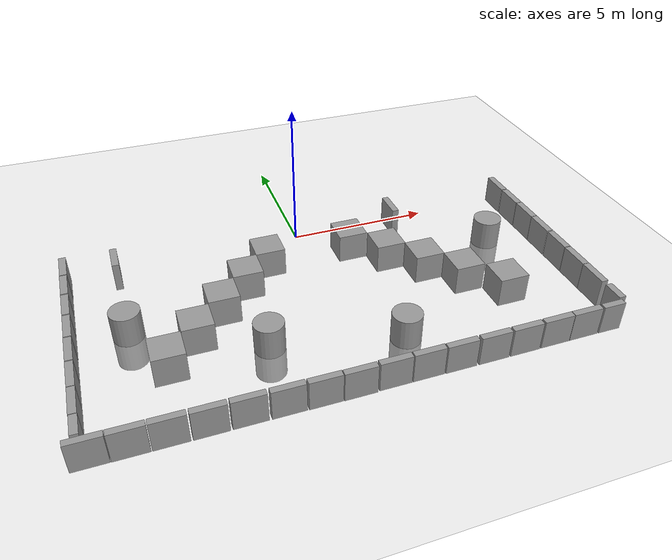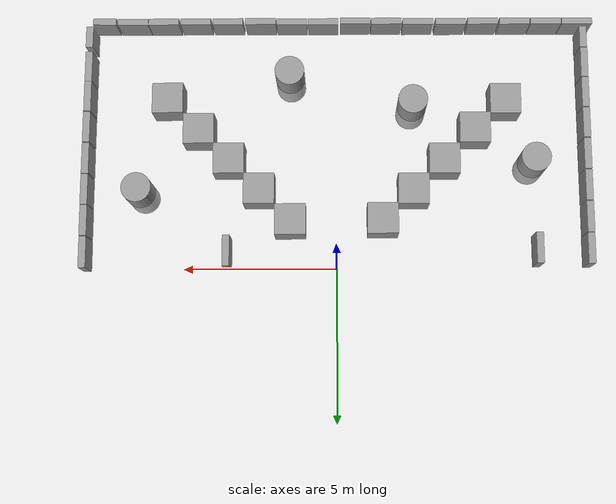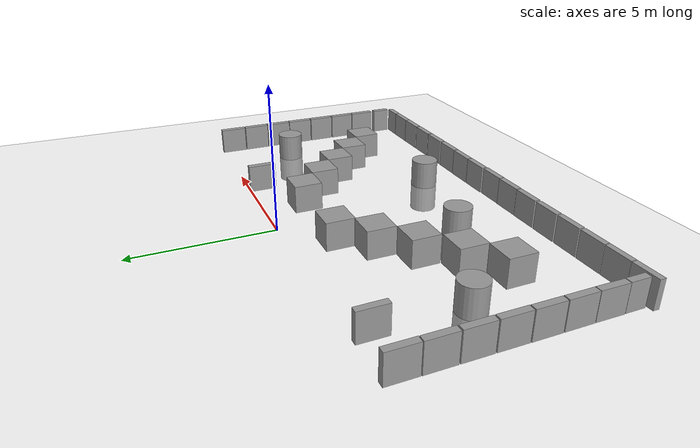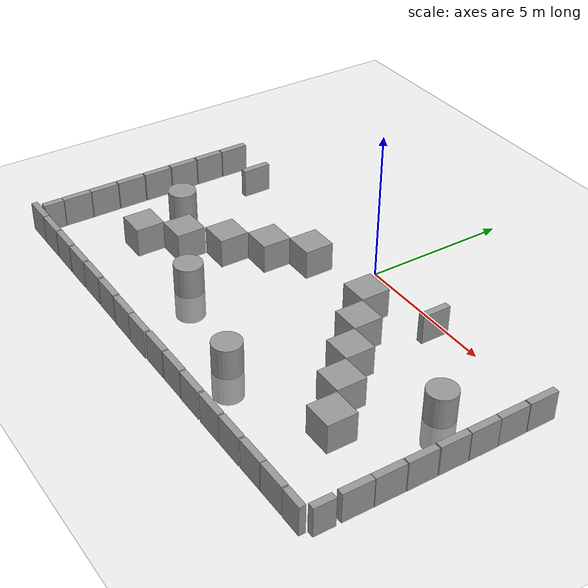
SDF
<sdf version="1.6">
 <world name="default">
  <model name="ground_plane">
   <static>1</static>
   <static>1</static>
   <link name="link">
    <collision name="collision">
     <geometry><plane><normal>0 0 1</normal><size>100 100</size></plane></geometry>
     <surface><friction><ode><mu>100</mu><mu2>50</mu2></ode></friction></surface>
    </collision>
    <visual name="visual">
     <cast_shadows>0</cast_shadows>
     <geometry><plane><normal>0 0 1</normal><size>100 100</size></plane></geometry>
     <material>
      <script><uri>file://media/materials/scripts/gazebo.material</uri><name>Gazebo/Grey</name></script>
     </material>
    </visual>
   </link>
  </model>
  <model name="unit_box_0_clone_7">
   <pose>8.11276 -0.449315 0.5 0 -0 0.000127</pose>
   <link name="link">
    <inertial>
     <mass>1</mass>
     <inertia>
      <ixx>0.166667</ixx>
      <ixy>0</ixy>
      <ixz>0</ixz>
      <iyy>0.166667</iyy>
      <iyz>0</iyz>
      <izz>0.166667</izz>
     </inertia>
    </inertial>
    <collision name="collision"><geometry><box><size>0.230819 1 1</size></box></geometry></collision>
    <visual name="visual">
     <geometry><box><size>0.230819 1 1</size></box></geometry>
     <material>
      <script><name>Gazebo/Grey</name><uri>file://media/materials/scripts/gazebo.material</uri></script>
     </material>
    </visual>
   </link>
  </model>
  <model name="unit_box_0_clone_8">
   <pose>8.11912 -1.4863 0.5 0 -0 0.000127</pose>
   <link name="link">
    <inertial>
     <mass>1</mass>
     <inertia>
      <ixx>0.166667</ixx>
      <ixy>0</ixy>
      <ixz>0</ixz>
      <iyy>0.166667</iyy>
      <iyz>0</iyz>
      <izz>0.166667</izz>
     </inertia>
    </inertial>
    <collision name="collision"><geometry><box><size>0.230819 1 1</size></box></geometry></collision>
    <visual name="visual">
     <geometry><box><size>0.230819 1 1</size></box></geometry>
     <material>
      <script><name>Gazebo/Grey</name><uri>file://media/materials/scripts/gazebo.material</uri></script>
     </material>
    </visual>
   </link>
  </model>
  <model name="unit_box_0_clone_9">
   <pose>8.12548 -2.5042 0.5 0 -0 0.000127</pose>
   <link name="link">
    <inertial>
     <mass>1</mass>
     <inertia>
      <ixx>0.166667</ixx>
      <ixy>0</ixy>
      <ixz>0</ixz>
      <iyy>0.166667</iyy>
      <iyz>0</iyz>
      <izz>0.166667</izz>
     </inertia>
    </inertial>
    <collision name="collision"><geometry><box><size>0.230819 1 1</size></box></geometry></collision>
    <visual name="visual">
     <geometry><box><size>0.230819 1 1</size></box></geometry>
     <material>
      <script><name>Gazebo/Grey</name><uri>file://media/materials/scripts/gazebo.material</uri></script>
     </material>
    </visual>
   </link>
  </model>
  <model name="unit_box_0_clone_10">
   <pose>8.12331 -3.52222 0.5 0 -0 0.000127</pose>
   <link name="link">
    <inertial>
     <mass>1</mass>
     <inertia>
      <ixx>0.166667</ixx>
      <ixy>0</ixy>
      <ixz>0</ixz>
      <iyy>0.166667</iyy>
      <iyz>0</iyz>
      <izz>0.166667</izz>
     </inertia>
    </inertial>
    <collision name="collision"><geometry><box><size>0.230819 1 1</size></box></geometry></collision>
    <visual name="visual">
     <geometry><box><size>0.230819 1 1</size></box></geometry>
     <material>
      <script><name>Gazebo/Grey</name><uri>file://media/materials/scripts/gazebo.material</uri></script>
     </material>
    </visual>
   </link>
  </model>
  <model name="unit_box_0_clone_11">
   <pose>8.1233 -4.56315 0.5 0 -0 0.000127</pose>
   <link name="link">
    <inertial>
     <mass>1</mass>
     <inertia>
      <ixx>0.166667</ixx>
      <ixy>0</ixy>
      <ixz>0</ixz>
      <iyy>0.166667</iyy>
      <iyz>0</iyz>
      <izz>0.166667</izz>
     </inertia>
    </inertial>
    <collision name="collision"><geometry><box><size>0.230819 1 1</size></box></geometry></collision>
    <visual name="visual">
     <geometry><box><size>0.230819 1 1</size></box></geometry>
     <material>
      <script><name>Gazebo/Grey</name><uri>file://media/materials/scripts/gazebo.material</uri></script>
     </material>
    </visual>
   </link>
  </model>
  <model name="unit_box_0_clone_12">
   <pose>8.11815 -5.59377 0.5 0 -0 0.000127</pose>
   <link name="link">
    <inertial>
     <mass>1</mass>
     <inertia>
      <ixx>0.166667</ixx>
      <ixy>0</ixy>
      <ixz>0</ixz>
      <iyy>0.166667</iyy>
      <iyz>0</iyz>
      <izz>0.166667</izz>
     </inertia>
    </inertial>
    <collision name="collision"><geometry><box><size>0.230819 1 1</size></box></geometry></collision>
    <visual name="visual">
     <geometry><box><size>0.230819 1 1</size></box></geometry>
     <material>
      <script><name>Gazebo/Grey</name><uri>file://media/materials/scripts/gazebo.material</uri></script>
     </material>
    </visual>
   </link>
  </model>
  <model name="unit_box_0_clone_13">
   <pose>8.11333 -6.60776 0.5 -0 -0 -0.005608</pose>
   <link name="link">
    <inertial>
     <mass>1</mass>
     <inertia>
      <ixx>0.166667</ixx>
      <ixy>0</ixy>
      <ixz>0</ixz>
      <iyy>0.166667</iyy>
      <iyz>0</iyz>
      <izz>0.166667</izz>
     </inertia>
    </inertial>
    <collision name="collision"><geometry><box><size>0.230819 1 1</size></box></geometry></collision>
    <visual name="visual">
     <geometry><box><size>0.230819 1 1</size></box></geometry>
     <material>
      <script><name>Gazebo/Grey</name><uri>file://media/materials/scripts/gazebo.material</uri></script>
     </material>
    </visual>
   </link>
  </model>
  <model name="unit_box_clone_15_clone_0">
   <pose>6.71207 -8.1313 0.5 0 -0 0.000187</pose>
   <link name="link">
    <inertial>
     <mass>1</mass>
     <inertia>
      <ixx>0.166667</ixx>
      <ixy>0</ixy>
      <ixz>0</ixz>
      <iyy>0.166667</iyy>
      <iyz>0</iyz>
      <izz>0.166667</izz>
     </inertia>
    </inertial>
    <collision name="collision"><geometry><box><size>1 0.210541 1</size></box></geometry></collision>
    <visual name="visual">
     <geometry><box><size>1 0.210541 1</size></box></geometry>
     <material>
      <script><name>Gazebo/Grey</name><uri>file://media/materials/scripts/gazebo.material</uri></script>
     </material>
    </visual>
   </link>
  </model>
  <model name="unit_box_clone_15_clone_1">
   <pose>5.69716 -8.13129 0.5 0 -0 0.000187</pose>
   <link name="link">
    <inertial>
     <mass>1</mass>
     <inertia>
      <ixx>0.166667</ixx>
      <ixy>0</ixy>
      <ixz>0</ixz>
      <iyy>0.166667</iyy>
      <iyz>0</iyz>
      <izz>0.166667</izz>
     </inertia>
    </inertial>
    <collision name="collision"><geometry><box><size>1 0.210541 1</size></box></geometry></collision>
    <visual name="visual">
     <geometry><box><size>1 0.210541 1</size></box></geometry>
     <material>
      <script><name>Gazebo/Grey</name><uri>file://media/materials/scripts/gazebo.material</uri></script>
     </material>
    </visual>
   </link>
  </model>
  <model name="unit_box_clone_15_clone_2">
   <pose>4.63882 -8.13747 0.5 0 -0 0.000187</pose>
   <link name="link">
    <inertial>
     <mass>1</mass>
     <inertia>
      <ixx>0.166667</ixx>
      <ixy>0</ixy>
      <ixz>0</ixz>
      <iyy>0.166667</iyy>
      <iyz>0</iyz>
      <izz>0.166667</izz>
     </inertia>
    </inertial>
    <collision name="collision"><geometry><box><size>1 0.210541 1</size></box></geometry></collision>
    <visual name="visual">
     <geometry><box><size>1 0.210541 1</size></box></geometry>
     <material>
      <script><name>Gazebo/Grey</name><uri>file://media/materials/scripts/gazebo.material</uri></script>
     </material>
    </visual>
   </link>
  </model>
  <model name="unit_box_clone_15_clone_3">
   <pose>3.57976 -8.13747 0.5 0 -0 0.000187</pose>
   <link name="link">
    <inertial>
     <mass>1</mass>
     <inertia>
      <ixx>0.166667</ixx>
      <ixy>0</ixy>
      <ixz>0</ixz>
      <iyy>0.166667</iyy>
      <iyz>0</iyz>
      <izz>0.166667</izz>
     </inertia>
    </inertial>
    <collision name="collision"><geometry><box><size>1 0.210541 1</size></box></geometry></collision>
    <visual name="visual">
     <geometry><box><size>1 0.210541 1</size></box></geometry>
     <material>
      <script><name>Gazebo/Grey</name><uri>file://media/materials/scripts/gazebo.material</uri></script>
     </material>
    </visual>
   </link>
  </model>
  <model name="unit_box_clone_15_clone_4">
   <pose>2.49816 -8.13746 0.5 0 -0 0.000187</pose>
   <link name="link">
    <inertial>
     <mass>1</mass>
     <inertia>
      <ixx>0.166667</ixx>
      <ixy>0</ixy>
      <ixz>0</ixz>
      <iyy>0.166667</iyy>
      <iyz>0</iyz>
      <izz>0.166667</izz>
     </inertia>
    </inertial>
    <collision name="collision"><geometry><box><size>1 0.210541 1</size></box></geometry></collision>
    <visual name="visual">
     <geometry><box><size>1 0.210541 1</size></box></geometry>
     <material>
      <script><name>Gazebo/Grey</name><uri>file://media/materials/scripts/gazebo.material</uri></script>
     </material>
    </visual>
   </link>
  </model>
  <model name="unit_box_clone_15_clone_5">
   <pose>1.46162 -8.12619 0.5 0 -0 0.000187</pose>
   <link name="link">
    <inertial>
     <mass>1</mass>
     <inertia>
      <ixx>0.166667</ixx>
      <ixy>0</ixy>
      <ixz>0</ixz>
      <iyy>0.166667</iyy>
      <iyz>0</iyz>
      <izz>0.166667</izz>
     </inertia>
    </inertial>
    <collision name="collision"><geometry><box><size>1 0.210541 1</size></box></geometry></collision>
    <visual name="visual">
     <geometry><box><size>1 0.210541 1</size></box></geometry>
     <material>
      <script><name>Gazebo/Grey</name><uri>file://media/materials/scripts/gazebo.material</uri></script>
     </material>
    </visual>
   </link>
  </model>
  <model name="unit_box_clone_15_clone_6">
   <pose>0.425094 -8.12618 0.5 0 -0 0.000187</pose>
   <link name="link">
    <inertial>
     <mass>1</mass>
     <inertia>
      <ixx>0.166667</ixx>
      <ixy>0</ixy>
      <ixz>0</ixz>
      <iyy>0.166667</iyy>
      <iyz>0</iyz>
      <izz>0.166667</izz>
     </inertia>
    </inertial>
    <collision name="collision"><geometry><box><size>1 0.210541 1</size></box></geometry></collision>
    <visual name="visual">
     <geometry><box><size>1 0.210541 1</size></box></geometry>
     <material>
      <script><name>Gazebo/Grey</name><uri>file://media/materials/scripts/gazebo.material</uri></script>
     </material>
    </visual>
   </link>
  </model>
  <model name="unit_box_clone_15_clone_7">
   <pose>-0.633968 -8.14873 0.5 0 -0 0.000187</pose>
   <link name="link">
    <inertial>
     <mass>1</mass>
     <inertia>
      <ixx>0.166667</ixx>
      <ixy>0</ixy>
      <ixz>0</ixz>
      <iyy>0.166667</iyy>
      <iyz>0</iyz>
      <izz>0.166667</izz>
     </inertia>
    </inertial>
    <collision name="collision"><geometry><box><size>1 0.210541 1</size></box></geometry></collision>
    <visual name="visual">
     <geometry><box><size>1 0.210541 1</size></box></geometry>
     <material>
      <script><name>Gazebo/Grey</name><uri>file://media/materials/scripts/gazebo.material</uri></script>
     </material>
    </visual>
   </link>
  </model>
  <model name="unit_box_clone_15_clone_8">
   <pose>-1.65922 -8.13745 0.5 0 -0 0.000187</pose>
   <link name="link">
    <inertial>
     <mass>1</mass>
     <inertia>
      <ixx>0.166667</ixx>
      <ixy>0</ixy>
      <ixz>0</ixz>
      <iyy>0.166667</iyy>
      <iyz>0</iyz>
      <izz>0.166667</izz>
     </inertia>
    </inertial>
    <collision name="collision"><geometry><box><size>1 0.210541 1</size></box></geometry></collision>
    <visual name="visual">
     <geometry><box><size>1 0.210541 1</size></box></geometry>
     <material>
      <script><name>Gazebo/Grey</name><uri>file://media/materials/scripts/gazebo.material</uri></script>
     </material>
    </visual>
   </link>
  </model>
  <model name="unit_box_clone_15_clone_9">
   <pose>-2.70702 -8.1262 0.5 0 -0 0.000187</pose>
   <link name="link">
    <inertial>
     <mass>1</mass>
     <inertia>
      <ixx>0.166667</ixx>
      <ixy>0</ixy>
      <ixz>0</ixz>
      <iyy>0.166667</iyy>
      <iyz>0</iyz>
      <izz>0.166667</izz>
     </inertia>
    </inertial>
    <collision name="collision"><geometry><box><size>1 0.210541 1</size></box></geometry></collision>
    <visual name="visual">
     <geometry><box><size>1 0.210541 1</size></box></geometry>
     <material>
      <script><name>Gazebo/Grey</name><uri>file://media/materials/scripts/gazebo.material</uri></script>
     </material>
    </visual>
   </link>
  </model>
  <model name="unit_box_0_clone_4_clone_7">
   <pose>-8.12609 -0.518029 0.5 0 -0 0.000127</pose>
   <link name="link">
    <inertial>
     <mass>1</mass>
     <inertia>
      <ixx>0.166667</ixx>
      <ixy>0</ixy>
      <ixz>0</ixz>
      <iyy>0.166667</iyy>
      <iyz>0</iyz>
      <izz>0.166667</izz>
     </inertia>
    </inertial>
    <collision name="collision"><geometry><box><size>0.230819 1 1</size></box></geometry></collision>
    <visual name="visual">
     <geometry><box><size>0.230819 1 1</size></box></geometry>
     <material>
      <script><name>Gazebo/Grey</name><uri>file://media/materials/scripts/gazebo.material</uri></script>
     </material>
    </visual>
   </link>
  </model>
  <model name="unit_box_0_clone_4_clone_8">
   <pose>-8.13284 -1.54445 0.5 0 -0 0.000127</pose>
   <link name="link">
    <inertial>
     <mass>1</mass>
     <inertia>
      <ixx>0.166667</ixx>
      <ixy>0</ixy>
      <ixz>0</ixz>
      <iyy>0.166667</iyy>
      <iyz>0</iyz>
      <izz>0.166667</izz>
     </inertia>
    </inertial>
    <collision name="collision"><geometry><box><size>0.230819 1 1</size></box></geometry></collision>
    <visual name="visual">
     <geometry><box><size>0.230819 1 1</size></box></geometry>
     <material>
      <script><name>Gazebo/Grey</name><uri>file://media/materials/scripts/gazebo.material</uri></script>
     </material>
    </visual>
   </link>
  </model>
  <model name="unit_box_0_clone_4_clone_9">
   <pose>-8.13285 -2.58437 0.5 0 -0 0.000127</pose>
   <link name="link">
    <inertial>
     <mass>1</mass>
     <inertia>
      <ixx>0.166667</ixx>
      <ixy>0</ixy>
      <ixz>0</ixz>
      <iyy>0.166667</iyy>
      <iyz>0</iyz>
      <izz>0.166667</izz>
     </inertia>
    </inertial>
    <collision name="collision"><geometry><box><size>0.230819 1 1</size></box></geometry></collision>
    <visual name="visual">
     <geometry><box><size>0.230819 1 1</size></box></geometry>
     <material>
      <script><name>Gazebo/Grey</name><uri>file://media/materials/scripts/gazebo.material</uri></script>
     </material>
    </visual>
   </link>
  </model>
  <model name="unit_box_0_clone_4_clone_10">
   <pose>-8.13285 -3.62429 0.5 0 -0 0.000127</pose>
   <link name="link">
    <inertial>
     <mass>1</mass>
     <inertia>
      <ixx>0.166667</ixx>
      <ixy>0</ixy>
      <ixz>0</ixz>
      <iyy>0.166667</iyy>
      <iyz>0</iyz>
      <izz>0.166667</izz>
     </inertia>
    </inertial>
    <collision name="collision"><geometry><box><size>0.230819 1 1</size></box></geometry></collision>
    <visual name="visual">
     <geometry><box><size>0.230819 1 1</size></box></geometry>
     <material>
      <script><name>Gazebo/Grey</name><uri>file://media/materials/scripts/gazebo.material</uri></script>
     </material>
    </visual>
   </link>
  </model>
  <model name="unit_box_0_clone_4_clone_11">
   <pose>-8.1396 -4.65746 0.5 0 -0 0.000127</pose>
   <link name="link">
    <inertial>
     <mass>1</mass>
     <inertia>
      <ixx>0.166667</ixx>
      <ixy>0</ixy>
      <ixz>0</ixz>
      <iyy>0.166667</iyy>
      <iyz>0</iyz>
      <izz>0.166667</izz>
     </inertia>
    </inertial>
    <collision name="collision"><geometry><box><size>0.230819 1 1</size></box></geometry></collision>
    <visual name="visual">
     <geometry><box><size>0.230819 1 1</size></box></geometry>
     <material>
      <script><name>Gazebo/Grey</name><uri>file://media/materials/scripts/gazebo.material</uri></script>
     </material>
    </visual>
   </link>
  </model>
  <model name="unit_box_0_clone_4_clone_12">
   <pose>-8.1396 -5.69063 0.5 0 -0 0.000127</pose>
   <link name="link">
    <inertial>
     <mass>1</mass>
     <inertia>
      <ixx>0.166667</ixx>
      <ixy>0</ixy>
      <ixz>0</ixz>
      <iyy>0.166667</iyy>
      <iyz>0</iyz>
      <izz>0.166667</izz>
     </inertia>
    </inertial>
    <collision name="collision"><geometry><box><size>0.230819 1 1</size></box></geometry></collision>
    <visual name="visual">
     <geometry><box><size>0.230819 1 1</size></box></geometry>
     <material>
      <script><name>Gazebo/Grey</name><uri>file://media/materials/scripts/gazebo.material</uri></script>
     </material>
    </visual>
   </link>
  </model>
  <model name="unit_box_0_clone_4_clone_13">
   <pose>-8.14113 -6.70872 0.5 1e-06 -1e-06 -0.009587</pose>
   <link name="link">
    <inertial>
     <mass>1</mass>
     <inertia>
      <ixx>0.166667</ixx>
      <ixy>0</ixy>
      <ixz>0</ixz>
      <iyy>0.166667</iyy>
      <iyz>0</iyz>
      <izz>0.166667</izz>
     </inertia>
    </inertial>
    <collision name="collision"><geometry><box><size>0.230819 1 1</size></box></geometry></collision>
    <visual name="visual">
     <geometry><box><size>0.230819 1 1</size></box></geometry>
     <material>
      <script><name>Gazebo/Grey</name><uri>file://media/materials/scripts/gazebo.material</uri></script>
     </material>
    </visual>
   </link>
  </model>
  <model name="unit_box_0_clone_4_clone_13_clone_clone">
   <pose>-8.13833 -7.57659 0.500001 1e-06 -0 -0.007573</pose>
   <link name="link">
    <inertial>
     <mass>1</mass>
     <inertia>
      <ixx>0.166667</ixx>
      <ixy>0</ixy>
      <ixz>0</ixz>
      <iyy>0.166667</iyy>
      <iyz>0</iyz>
      <izz>0.166667</izz>
     </inertia>
    </inertial>
    <collision name="collision"><geometry><box><size>0.230819 0.700336 1</size></box></geometry></collision>
    <visual name="visual">
     <geometry><box><size>0.230819 0.700336 1</size></box></geometry>
     <material>
      <script><name>Gazebo/Grey</name><uri>file://media/materials/scripts/gazebo.material</uri></script>
     </material>
    </visual>
   </link>
  </model>
  <model name="unit_box_clone_11_clone_1_clone_2">
   <pose>7.64249 -8.13927 0.499997 -2e-06 8e-06 -0.005754</pose>
   <link name="link">
    <inertial>
     <mass>1</mass>
     <inertia>
      <ixx>0.166667</ixx>
      <ixy>0</ixy>
      <ixz>0</ixz>
      <iyy>0.166667</iyy>
      <iyz>0</iyz>
      <izz>0.166667</izz>
     </inertia>
    </inertial>
    <collision name="collision"><geometry><box><size>0.750223 0.210541 1</size></box></geometry></collision>
    <visual name="visual">
     <geometry><box><size>0.750223 0.210541 1</size></box></geometry>
     <material>
      <script><name>Gazebo/Grey</name><uri>file://media/materials/scripts/gazebo.material</uri></script>
     </material>
    </visual>
   </link>
  </model>
  <model name="unit_box_0_clone_4_clone_13_clone_clone_clone">
   <pose>8.11858 -7.62155 0.499997 -7e-06 -3e-06 -0.005341</pose>
   <link name="link">
    <inertial>
     <mass>1</mass>
     <inertia>
      <ixx>0.166667</ixx>
      <ixy>0</ixy>
      <ixz>0</ixz>
      <iyy>0.166667</iyy>
      <iyz>0</iyz>
      <izz>0.166667</izz>
     </inertia>
    </inertial>
    <collision name="collision"><geometry><box><size>0.230819 0.700336 1</size></box></geometry></collision>
    <visual name="visual">
     <geometry><box><size>0.230819 0.700336 1</size></box></geometry>
     <material>
      <script><name>Gazebo/Grey</name><uri>file://media/materials/scripts/gazebo.material</uri></script>
     </material>
    </visual>
   </link>
  </model>
  <model name="unit_box_clone_16">
   <pose>1.5007 -1.49592 0.499995 0 1e-05 2e-06</pose>
   <link name="link">
    <inertial>
     <mass>1</mass>
     <inertia>
      <ixx>0.166667</ixx>
      <ixy>0</ixy>
      <ixz>0</ixz>
      <iyy>0.166667</iyy>
      <iyz>0</iyz>
      <izz>0.166667</izz>
     </inertia>
    </inertial>
    <collision name="collision"><geometry><box><size>1 1 1</size></box></geometry></collision>
    <visual name="visual">
     <geometry><box><size>1 1 1</size></box></geometry>
     <material>
      <script><name>Gazebo/Grey</name><uri>file://media/materials/scripts/gazebo.material</uri></script>
     </material>
    </visual>
   </link>
  </model>
  <model name="unit_box_clone_17">
   <pose>2.51298 -2.50799 0.499995 0 -1e-05 0.000614</pose>
   <link name="link">
    <inertial>
     <mass>1</mass>
     <inertia>
      <ixx>0.166667</ixx>
      <ixy>0</ixy>
      <ixz>0</ixz>
      <iyy>0.166667</iyy>
      <iyz>0</iyz>
      <izz>0.166667</izz>
     </inertia>
    </inertial>
    <collision name="collision"><geometry><box><size>1 1 1</size></box></geometry></collision>
    <visual name="visual">
     <geometry><box><size>1 1 1</size></box></geometry>
     <material>
      <script><name>Gazebo/Grey</name><uri>file://media/materials/scripts/gazebo.material</uri></script>
     </material>
    </visual>
   </link>
  </model>
  <model name="unit_box_clone_18">
   <pose>3.49779 -3.5071 0.499995 0 1e-05 0.00122</pose>
   <link name="link">
    <inertial>
     <mass>1</mass>
     <inertia>
      <ixx>0.166667</ixx>
      <ixy>0</ixy>
      <ixz>0</ixz>
      <iyy>0.166667</iyy>
      <iyz>0</iyz>
      <izz>0.166667</izz>
     </inertia>
    </inertial>
    <collision name="collision"><geometry><box><size>1 1 1</size></box></geometry></collision>
    <visual name="visual">
     <geometry><box><size>1 1 1</size></box></geometry>
     <material>
      <script><name>Gazebo/Grey</name><uri>file://media/materials/scripts/gazebo.material</uri></script>
     </material>
    </visual>
   </link>
  </model>
  <model name="unit_box_clone_19">
   <pose>4.4826 -4.50619 0.499995 0 1e-05 0.00065</pose>
   <link name="link">
    <inertial>
     <mass>1</mass>
     <inertia>
      <ixx>0.166667</ixx>
      <ixy>0</ixy>
      <ixz>0</ixz>
      <iyy>0.166667</iyy>
      <iyz>0</iyz>
      <izz>0.166667</izz>
     </inertia>
    </inertial>
    <collision name="collision"><geometry><box><size>1 1 1</size></box></geometry></collision>
    <visual name="visual">
     <geometry><box><size>1 1 1</size></box></geometry>
     <material>
      <script><name>Gazebo/Grey</name><uri>file://media/materials/scripts/gazebo.material</uri></script>
     </material>
    </visual>
   </link>
  </model>
  <model name="unit_box_clone_20">
   <pose>5.50895 -5.53233 0.499995 0 1e-05 2e-06</pose>
   <link name="link">
    <inertial>
     <mass>1</mass>
     <inertia>
      <ixx>0.166667</ixx>
      <ixy>0</ixy>
      <ixz>0</ixz>
      <iyy>0.166667</iyy>
      <iyz>0</iyz>
      <izz>0.166667</izz>
     </inertia>
    </inertial>
    <collision name="collision"><geometry><box><size>1 1 1</size></box></geometry></collision>
    <visual name="visual">
     <geometry><box><size>1 1 1</size></box></geometry>
     <material>
      <script><name>Gazebo/Grey</name><uri>file://media/materials/scripts/gazebo.material</uri></script>
     </material>
    </visual>
   </link>
  </model>
  <model name="unit_box_clone_26">
   <pose>-1.48852 -1.52259 0.499995 0 1e-05 0.001869</pose>
   <link name="link">
    <inertial>
     <mass>1</mass>
     <inertia>
      <ixx>0.166667</ixx>
      <ixy>0</ixy>
      <ixz>0</ixz>
      <iyy>0.166667</iyy>
      <iyz>0</iyz>
      <izz>0.166667</izz>
     </inertia>
    </inertial>
    <collision name="collision"><geometry><box><size>1 1 1</size></box></geometry></collision>
    <visual name="visual">
     <geometry><box><size>1 1 1</size></box></geometry>
     <material>
      <script><name>Gazebo/Grey</name><uri>file://media/materials/scripts/gazebo.material</uri></script>
     </material>
    </visual>
   </link>
  </model>
  <model name="unit_box_clone_27">
   <pose>-2.49075 -2.48665 0.499995 0 -1e-05 -0.006025</pose>
   <link name="link">
    <inertial>
     <mass>1</mass>
     <inertia>
      <ixx>0.166667</ixx>
      <ixy>0</ixy>
      <ixz>0</ixz>
      <iyy>0.166667</iyy>
      <iyz>0</iyz>
      <izz>0.166667</izz>
     </inertia>
    </inertial>
    <collision name="collision"><geometry><box><size>1 1 1</size></box></geometry></collision>
    <visual name="visual">
     <geometry><box><size>1 1 1</size></box></geometry>
     <material>
      <script><name>Gazebo/Grey</name><uri>file://media/materials/scripts/gazebo.material</uri></script>
     </material>
    </visual>
   </link>
  </model>
  <model name="unit_cylinder_153_clone_clone_5_clone_clone_13_clone_0_clone_29_clone_32_clone_0_clone_4_clone_46_clone_42_clone_clone_clone">
   <static>1</static>
   <pose>-2.5108 -5.47063 0 0 -0 0</pose>
   <link name="link">
    <inertial>
     <mass>1</mass>
     <inertia><ixx>0.145833</ixx><ixy>0</ixy><ixz>0</ixz><iyy>0.145833</iyy><iyz>0</iyz><izz>0.125</izz></inertia>
    </inertial>
    <collision name="collision">
     <geometry><cylinder><radius>0.484115</radius><length>2.01101</length></cylinder></geometry>
    </collision>
    <visual name="visual">
     <geometry><cylinder><radius>0.484115</radius><length>2.01101</length></cylinder></geometry>
     <material>
      <script><name>Gazebo/Grey</name><uri>file://media/materials/scripts/gazebo.material</uri></script>
     </material>
    </visual>
   </link>
  </model>
  <model name="unit_cylinder_153_clone_clone_5_clone_clone_13_clone_0_clone_29_clone_32_clone_0_clone_4_clone_46_clone_42_clone_clone_clone_0">
   <static>1</static>
   <pose>1.53409 -6.44926 0 0 -0 0</pose>
   <link name="link">
    <inertial>
     <mass>1</mass>
     <inertia><ixx>0.145833</ixx><ixy>0</ixy><ixz>0</ixz><iyy>0.145833</iyy><iyz>0</iyz><izz>0.125</izz></inertia>
    </inertial>
    <collision name="collision">
     <geometry><cylinder><radius>0.484115</radius><length>2.01101</length></cylinder></geometry>
    </collision>
    <visual name="visual">
     <geometry><cylinder><radius>0.484115</radius><length>2.01101</length></cylinder></geometry>
     <material>
      <script><name>Gazebo/Grey</name><uri>file://media/materials/scripts/gazebo.material</uri></script>
     </material>
    </visual>
   </link>
  </model>
  <model name="unit_cylinder_153_clone_clone_5_clone_clone_13_clone_0_clone_29_clone_32_clone_0_clone_4_clone_46_clone_42_clone_clone_clone_2">
   <static>1</static>
   <pose>-6.47415 -3.5134 0 0 -0 0</pose>
   <link name="link">
    <inertial>
     <mass>1</mass>
     <inertia><ixx>0.145833</ixx><ixy>0</ixy><ixz>0</ixz><iyy>0.145833</iyy><iyz>0</iyz><izz>0.125</izz></inertia>
    </inertial>
    <collision name="collision">
     <geometry><cylinder><radius>0.484115</radius><length>2.01101</length></cylinder></geometry>
    </collision>
    <visual name="visual">
     <geometry><cylinder><radius>0.484115</radius><length>2.01101</length></cylinder></geometry>
     <material>
      <script><name>Gazebo/Grey</name><uri>file://media/materials/scripts/gazebo.material</uri></script>
     </material>
    </visual>
   </link>
  </model>
  <model name="unit_cylinder_153_clone_clone_5_clone_clone_13_clone_0_clone_29_clone_32_clone_0_clone_4_clone_46_clone_42_clone_clone_clone_4">
   <static>1</static>
   <pose>6.46432 -2.55517 0 0 -0 0</pose>
   <link name="link">
    <inertial>
     <mass>1</mass>
     <inertia><ixx>0.145833</ixx><ixy>0</ixy><ixz>0</ixz><iyy>0.145833</iyy><iyz>0</iyz><izz>0.125</izz></inertia>
    </inertial>
    <collision name="collision">
     <geometry><cylinder><radius>0.484115</radius><length>2.01101</length></cylinder></geometry>
    </collision>
    <visual name="visual">
     <geometry><cylinder><radius>0.484115</radius><length>2.01101</length></cylinder></geometry>
     <material>
      <script><name>Gazebo/Grey</name><uri>file://media/materials/scripts/gazebo.material</uri></script>
     </material>
    </visual>
   </link>
  </model>
  <model name="unit_box_0_clone_3_clone_1_clone_2">
   <pose>3.5458 -0.482633 0.5 0 -0 0.00012</pose>
   <link name="link">
    <inertial>
     <mass>1</mass>
     <inertia>
      <ixx>0.166667</ixx>
      <ixy>0</ixy>
      <ixz>0</ixz>
      <iyy>0.166667</iyy>
      <iyz>0</iyz>
      <izz>0.166667</izz>
     </inertia>
    </inertial>
    <collision name="collision"><geometry><box><size>0.230819 1 1</size></box></geometry></collision>
    <visual name="visual">
     <geometry><box><size>0.230819 1 1</size></box></geometry>
     <material>
      <script><name>Gazebo/Grey</name><uri>file://media/materials/scripts/gazebo.material</uri></script>
     </material>
    </visual>
   </link>
  </model>
  <model name="unit_box_clone_15_clone_9_clone">
   <pose>-3.78509 -8.12023 0.5 0 -0 0.000464</pose>
   <link name="link">
    <inertial>
     <mass>1</mass>
     <inertia>
      <ixx>0.166667</ixx>
      <ixy>0</ixy>
      <ixz>0</ixz>
      <iyy>0.166667</iyy>
      <iyz>0</iyz>
      <izz>0.166667</izz>
     </inertia>
    </inertial>
    <collision name="collision"><geometry><box><size>1 0.210541 1</size></box></geometry></collision>
    <visual name="visual">
     <geometry><box><size>1 0.210541 1</size></box></geometry>
     <material>
      <script><name>Gazebo/Grey</name><uri>file://media/materials/scripts/gazebo.material</uri></script>
     </material>
    </visual>
   </link>
  </model>
  <model name="unit_box_clone_15_clone_9_clone_0">
   <pose>-4.84702 -8.12589 0.5 0 -0 0.000444</pose>
   <link name="link">
    <inertial>
     <mass>1</mass>
     <inertia>
      <ixx>0.166667</ixx>
      <ixy>0</ixy>
      <ixz>0</ixz>
      <iyy>0.166667</iyy>
      <iyz>0</iyz>
      <izz>0.166667</izz>
     </inertia>
    </inertial>
    <collision name="collision"><geometry><box><size>1 0.210541 1</size></box></geometry></collision>
    <visual name="visual">
     <geometry><box><size>1 0.210541 1</size></box></geometry>
     <material>
      <script><name>Gazebo/Grey</name><uri>file://media/materials/scripts/gazebo.material</uri></script>
     </material>
    </visual>
   </link>
  </model>
  <model name="unit_box_clone_15_clone_9_clone_1">
   <pose>-5.90226 -8.12213 0.5 0 -0 0.000218</pose>
   <link name="link">
    <inertial>
     <mass>1</mass>
     <inertia>
      <ixx>0.166667</ixx>
      <ixy>0</ixy>
      <ixz>0</ixz>
      <iyy>0.166667</iyy>
      <iyz>0</iyz>
      <izz>0.166667</izz>
     </inertia>
    </inertial>
    <collision name="collision"><geometry><box><size>1 0.210541 1</size></box></geometry></collision>
    <visual name="visual">
     <geometry><box><size>1 0.210541 1</size></box></geometry>
     <material>
      <script><name>Gazebo/Grey</name><uri>file://media/materials/scripts/gazebo.material</uri></script>
     </material>
    </visual>
   </link>
  </model>
  <model name="unit_box_clone_15_clone_9_clone_2">
   <pose>-6.9322 -8.12211 0.5 0 -0 0.000238</pose>
   <link name="link">
    <inertial>
     <mass>1</mass>
     <inertia>
      <ixx>0.166667</ixx>
      <ixy>0</ixy>
      <ixz>0</ixz>
      <iyy>0.166667</iyy>
      <iyz>0</iyz>
      <izz>0.166667</izz>
     </inertia>
    </inertial>
    <collision name="collision"><geometry><box><size>1 0.210541 1</size></box></geometry></collision>
    <visual name="visual">
     <geometry><box><size>1 0.210541 1</size></box></geometry>
     <material>
      <script><name>Gazebo/Grey</name><uri>file://media/materials/scripts/gazebo.material</uri></script>
     </material>
    </visual>
   </link>
  </model>
  <model name="unit_box_clone_15_clone_9_clone_3">
   <pose>-7.95506 -8.11621 0.5 0 -0 0.000464</pose>
   <link name="link">
    <inertial>
     <mass>1</mass>
     <inertia>
      <ixx>0.166667</ixx>
      <ixy>0</ixy>
      <ixz>0</ixz>
      <iyy>0.166667</iyy>
      <iyz>0</iyz>
      <izz>0.166667</izz>
     </inertia>
    </inertial>
    <collision name="collision"><geometry><box><size>1 0.210541 1</size></box></geometry></collision>
    <visual name="visual">
     <geometry><box><size>1 0.210541 1</size></box></geometry>
     <material>
      <script><name>Gazebo/Grey</name><uri>file://media/materials/scripts/gazebo.material</uri></script>
     </material>
    </visual>
   </link>
  </model>
  <model name="unit_box_clone_12_clone_0">
   <pose>-3.50374 -3.48868 0.499995 0 -1e-05 2e-06</pose>
   <link name="link">
    <inertial>
     <mass>1</mass>
     <inertia>
      <ixx>0.166667</ixx>
      <ixy>0</ixy>
      <ixz>0</ixz>
      <iyy>0.166667</iyy>
      <iyz>0</iyz>
      <izz>0.166667</izz>
     </inertia>
    </inertial>
    <collision name="collision"><geometry><box><size>1 1 1</size></box></geometry></collision>
    <visual name="visual">
     <geometry><box><size>1 1 1</size></box></geometry>
     <material>
      <script><name>Gazebo/Grey</name><uri>file://media/materials/scripts/gazebo.material</uri></script>
     </material>
    </visual>
   </link>
  </model>
  <model name="unit_box_clone_12_clone_1">
   <pose>-4.51248 -4.51759 0.499995 1e-05 -0 2e-06</pose>
   <link name="link">
    <inertial>
     <mass>1</mass>
     <inertia>
      <ixx>0.166667</ixx>
      <ixy>0</ixy>
      <ixz>0</ixz>
      <iyy>0.166667</iyy>
      <iyz>0</iyz>
      <izz>0.166667</izz>
     </inertia>
    </inertial>
    <collision name="collision"><geometry><box><size>1 1 1</size></box></geometry></collision>
    <visual name="visual">
     <geometry><box><size>1 1 1</size></box></geometry>
     <material>
      <script><name>Gazebo/Grey</name><uri>file://media/materials/scripts/gazebo.material</uri></script>
     </material>
    </visual>
   </link>
  </model>
  <model name="unit_box_clone_12_clone_2">
   <pose>-5.52123 -5.48596 0.499995 0 -1e-05 2e-06</pose>
   <link name="link">
    <inertial>
     <mass>1</mass>
     <inertia>
      <ixx>0.166667</ixx>
      <ixy>0</ixy>
      <ixz>0</ixz>
      <iyy>0.166667</iyy>
      <iyz>0</iyz>
      <izz>0.166667</izz>
     </inertia>
    </inertial>
    <collision name="collision"><geometry><box><size>1 1 1</size></box></geometry></collision>
    <visual name="visual">
     <geometry><box><size>1 1 1</size></box></geometry>
     <material>
      <script><name>Gazebo/Grey</name><uri>file://media/materials/scripts/gazebo.material</uri></script>
     </material>
    </visual>
   </link>
  </model>
  <model name="unit_box_0_clone_4_clone_7_clone">
   <pose>-6.48958 -0.543158 0.499996 -7e-06 2e-06 0.000144</pose>
   <link name="link">
    <inertial>
     <mass>1</mass>
     <inertia>
      <ixx>0.166667</ixx>
      <ixy>0</ixy>
      <ixz>0</ixz>
      <iyy>0.166667</iyy>
      <iyz>0</iyz>
      <izz>0.166667</izz>
     </inertia>
    </inertial>
    <collision name="collision"><geometry><box><size>0.230819 1 1</size></box></geometry></collision>
    <visual name="visual">
     <geometry><box><size>0.230819 1 1</size></box></geometry>
     <material>
      <script><name>Gazebo/Grey</name><uri>file://media/materials/scripts/gazebo.material</uri></script>
     </material>
    </visual>
   </link>
  </model>
 </world>
</sdf>
